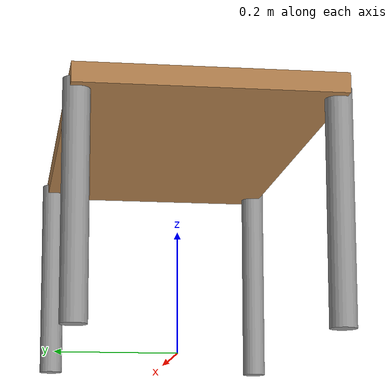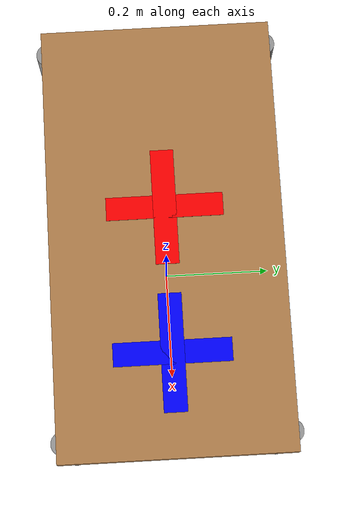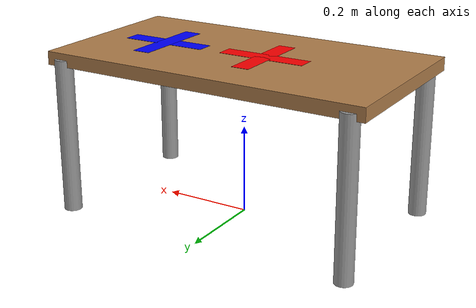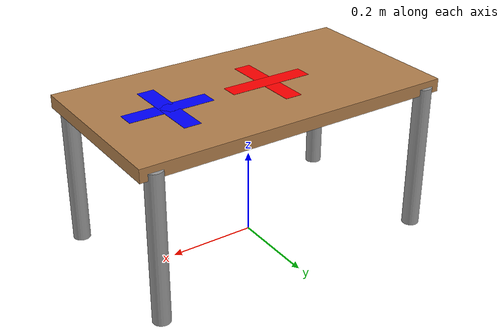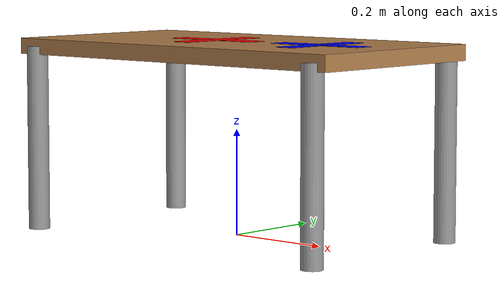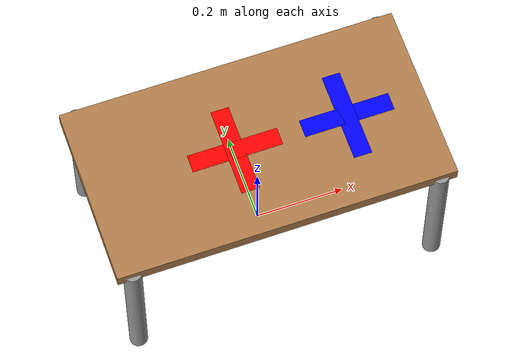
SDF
<?xml version="1.0" ?>
<sdf version="1.5">
  <model name="table">
    <static>true</static>
    <link name="link">

      <!-- Piano superficie -->
      <collision name="surface">
        <pose>0 0 0.35 0 0 0</pose>
        <geometry>
          <box>
            <size>0.75 0.4 0.03</size>
          </box>
        </geometry>
        <surface>
          <friction>
            <ode>
              <mu>0.6</mu>
              <mu2>0.6</mu2>
            </ode>
          </friction>
        </surface>
      </collision>

      <visual name="visual1">
        <pose>0 0 0.35 0 0 0</pose>
        <geometry>
          <box>
            <size>0.75 0.4 0.03</size>
          </box>
        </geometry>
        <material>
          <script>
            <uri>file://media/materials/scripts/gazebo.material</uri>
            <name>Gazebo/Wood</name>
          </script>
        </material>
      </visual>

<!-- Croce rossa -->
<visual name="red_cross">
  <pose>-0.05 0.0 0.365 0 0 0</pose>
  <geometry>
    <box>
      <size>0.04 0.2 0.001</size>
    </box>
  </geometry>
  <material>
    <ambient>1 0 0 1</ambient>
    <diffuse>1 0 0 1</diffuse>
  </material>
</visual>
<visual name="red_cross2">
  <pose>-0.05 0.0 0.365 0 0 1.5708</pose>
  <geometry>
    <box>
      <size>0.04 0.2 0.001</size>
    </box>
  </geometry>
  <material>
    <ambient>1 0 0 1</ambient>
    <diffuse>1 0 0 1</diffuse>
  </material>
</visual>

<!-- Croce blu -->
<visual name="blue_cross">
  <pose>0.2 0.0 0.365 0 0 0</pose>
  <geometry>
    <box>
      <size>0.04 0.2 0.001</size>
    </box>
  </geometry>
  <material>
    <ambient>0 0 1 1</ambient>
    <diffuse>0 0 1 1</diffuse>
  </material>
</visual>
<visual name="blue_cross2">
  <pose>0.2 0.0 0.365 0 0 1.5708</pose>
  <geometry>
    <box>
      <size>0.04 0.2 0.001</size>
    </box>
  </geometry>
  <material>
    <ambient>0 0 1 1</ambient>
    <diffuse>0 0 1 1</diffuse>
  </material>
</visual>

      <!-- Gambe -->

      <collision name="front_left_leg">
        <pose>0.34 0.19 0.175 0 0 0</pose>
        <geometry>
          <cylinder>
            <radius>0.02</radius>
            <length>0.35</length>
          </cylinder>
        </geometry>
      </collision>

      <visual name="front_left_leg">
        <pose>0.34 0.19 0.175 0 0 0</pose>
        <geometry>
          <cylinder>
            <radius>0.02</radius>
            <length>0.35</length>
          </cylinder>
        </geometry>
        <material>
          <script>
            <uri>file://media/materials/scripts/gazebo.material</uri>
            <name>Gazebo/Grey</name>
          </script>
        </material>
      </visual>

      <collision name="front_right_leg">
        <pose>0.34 -0.19 0.175 0 0 0</pose>
        <geometry>
          <cylinder>
            <radius>0.02</radius>
            <length>0.35</length>
          </cylinder>
        </geometry>
      </collision>

      <visual name="front_right_leg">
        <pose>0.34 -0.19 0.175 0 0 0</pose>
        <geometry>
          <cylinder>
            <radius>0.02</radius>
            <length>0.35</length>
          </cylinder>
        </geometry>
        <material>
          <script>
            <uri>file://media/materials/scripts/gazebo.material</uri>
            <name>Gazebo/Grey</name>
          </script>
        </material>
      </visual>

      <collision name="back_right_leg">
        <pose>-0.34 -0.19 0.175 0 0 0</pose>
        <geometry>
          <cylinder>
            <radius>0.02</radius>
            <length>0.35</length>
          </cylinder>
        </geometry>
      </collision>

      <visual name="back_right_leg">
        <pose>-0.34 -0.19 0.175 0 0 0</pose>
        <geometry>
          <cylinder>
            <radius>0.02</radius>
            <length>0.35</length>
          </cylinder>
        </geometry>
        <material>
          <script>
            <uri>file://media/materials/scripts/gazebo.material</uri>
            <name>Gazebo/Grey</name>
          </script>
        </material>
      </visual>

      <collision name="back_left_leg">
        <pose>-0.34 0.19 0.175 0 0 0</pose>
        <geometry>
          <cylinder>
            <radius>0.02</radius>
            <length>0.35</length>
          </cylinder>
        </geometry>
      </collision>

      <visual name="back_left_leg">
        <pose>-0.34 0.19 0.175 0 0 0</pose>
        <geometry>
          <cylinder>
            <radius>0.02</radius>
            <length>0.35</length>
          </cylinder>
        </geometry>
        <material>
          <script>
            <uri>file://media/materials/scripts/gazebo.material</uri>
            <name>Gazebo/Grey</name>
          </script>
        </material>
      </visual>

    </link>
  </model>
</sdf>
